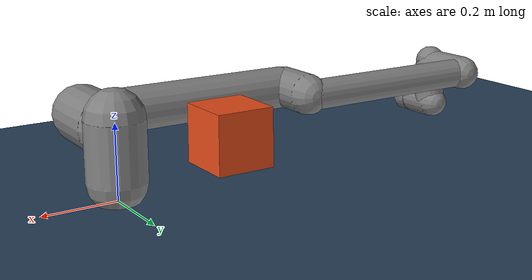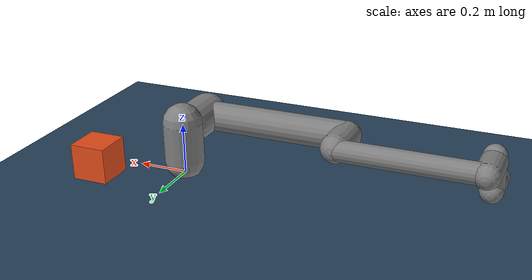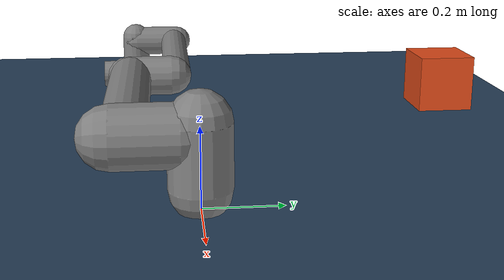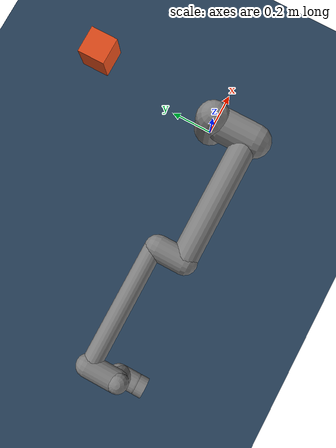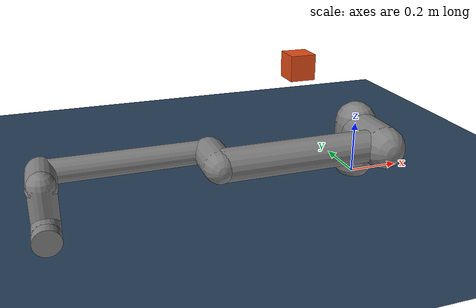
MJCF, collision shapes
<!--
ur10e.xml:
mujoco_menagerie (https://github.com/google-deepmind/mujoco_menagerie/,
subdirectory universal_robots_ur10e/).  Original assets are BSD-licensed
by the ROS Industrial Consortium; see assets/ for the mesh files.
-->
<?xml version="1.0"?>
<mujoco model="ur10e_follower_scene">

  <include file="ur10e.xml"/>

  <worldbody>
    <!-- Immovable box for contact / force-feedback testing -->
    <body name="target_box" pos="0.0 0.55 0.30">
      <geom name="box_geom" type="box" size="0.06 0.06 0.06"
            rgba="0.9 0.3 0.1 1"
            contype="1" conaffinity="1" friction="0.8 0.005 0.0001"/>
    </body>
  </worldbody>

</mujoco>

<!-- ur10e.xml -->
<mujoco model="ur10e">
  <compiler angle="radian" meshdir="../assets/ur10e" autolimits="true"/>

  <option timestep="0.002" integrator="implicitfast"/>

  <default>
    <default class="ur10e">
      <material specular="0.5" shininess="0.25"/>
      <joint axis="0 1 0" range="-6.28319 6.28319" armature="0.1"/>
      <default class="size4">
        <joint damping="10"/>
      </default>
      <default class="size3">
        <joint damping="5"/>
        <default class="size3_limited">
          <joint range="-3.1415 3.1415"/>
        </default>
      </default>
      <default class="size2">
        <joint damping="2"/>
      </default>
      <default class="visual">
        <geom type="mesh" contype="0" conaffinity="0" group="2"/>
      </default>
      <default class="collision">
        <geom type="capsule" group="3"/>
        <default class="eef_collision">
          <geom type="cylinder"/>
        </default>
      </default>
      <site size="0.001" rgba="0.5 0.5 0.5 0.3" group="4"/>
    </default>
  </default>

  <asset>
    <material class="ur10e" name="black"     rgba="0.033 0.033 0.033 1"/>
    <material class="ur10e" name="jointgray" rgba="0.278 0.278 0.278 1"/>
    <material class="ur10e" name="linkgray"  rgba="0.82 0.82 0.82 1"/>
    <material class="ur10e" name="urblue"    rgba="0.49 0.678 0.8 1"/>

    <texture type="skybox" builtin="gradient"
             rgb1="0.3 0.5 0.7" rgb2="0 0 0" width="512" height="3072"/>
    <texture type="2d" name="groundplane" builtin="checker" mark="edge"
             rgb1="0.2 0.3 0.4" rgb2="0.1 0.2 0.3" markrgb="0.8 0.8 0.8"
             width="300" height="300"/>
    <material name="groundplane" texture="groundplane" texuniform="true"
              texrepeat="5 5" reflectance="0.2"/>

    <mesh file="base_0.obj"/>
    <mesh file="base_1.obj"/>
    <mesh file="shoulder_0.obj"/>
    <mesh file="shoulder_1.obj"/>
    <mesh file="shoulder_2.obj"/>
    <mesh file="upperarm_0.obj"/>
    <mesh file="upperarm_1.obj"/>
    <mesh file="upperarm_2.obj"/>
    <mesh file="upperarm_3.obj"/>
    <mesh file="forearm_0.obj"/>
    <mesh file="forearm_1.obj"/>
    <mesh file="forearm_2.obj"/>
    <mesh file="forearm_3.obj"/>
    <mesh file="wrist1_0.obj"/>
    <mesh file="wrist1_1.obj"/>
    <mesh file="wrist1_2.obj"/>
    <mesh file="wrist2_0.obj"/>
    <mesh file="wrist2_1.obj"/>
    <mesh file="wrist2_2.obj"/>
    <mesh file="wrist3.obj"/>
  </asset>

  <worldbody>
    <!-- Scene lights + floor (so ur10e.xml is a self-contained scene) -->
    <light pos="0 0 1.5" dir="0 0 -1" directional="true"/>
    <light name="spotlight" mode="targetbodycom" target="wrist_2_link" pos="0 -1 2"/>
    <geom name="floor" size="0 0 0.05" type="plane" material="groundplane"/>

    <!-- UR10E robot                                                      -->
    <!-- base_link renamed from menagerie's "base" for ROS2 convention.   -->
    <!-- The 180° Z quat is preserved; HOME_QPOS compensates on joint 0.  -->
    <body name="base_link" quat="0 0 0 -1" childclass="ur10e">
      <inertial mass="4.0" pos="0 0 0"
                diaginertia="0.0061063308908 0.0061063308908 0.01125"/>
      <geom mesh="base_0" material="black"     class="visual"/>
      <geom mesh="base_1" material="jointgray" class="visual"/>
      <body name="shoulder_link" pos="0 0 0.181">
        <inertial pos="0 0 0" mass="7.778"
                  diaginertia="0.0314743 0.0314743 0.0218756"/>
        <joint name="shoulder_pan_joint" class="size4" axis="0 0 1"/>
        <geom mesh="shoulder_0" material="urblue"    class="visual"/>
        <geom mesh="shoulder_1" material="black"     class="visual"/>
        <geom mesh="shoulder_2" material="jointgray" class="visual"/>
        <geom class="collision" size="0.078 0.08" pos="0 0 -0.05"/>
        <body name="upper_arm_link" pos="0 0.176 0" quat="1 0 1 0">
          <inertial pos="0 0 0.3065" mass="12.93"
                    diaginertia="0.423074 0.423074 0.0363656"/>
          <joint name="shoulder_lift_joint" class="size4"/>
          <geom mesh="upperarm_0" material="black"     class="visual"/>
          <geom mesh="upperarm_1" material="jointgray" class="visual"/>
          <geom mesh="upperarm_2" material="urblue"    class="visual"/>
          <geom mesh="upperarm_3" material="linkgray"  class="visual"/>
          <geom class="collision" pos="0 -0.05 0" quat="1 1 0 0" size="0.078 0.08"/>
          <geom class="collision" size="0.06 0.3" pos="0 0 0.3"/>
          <body name="forearm_link" pos="0 -0.137 0.613">
            <inertial pos="0 0 0.2855" mass="3.87"
                      diaginertia="0.11059 0.11059 0.0108844"/>
            <joint name="elbow_joint" class="size3_limited"/>
            <geom mesh="forearm_0" material="urblue"    class="visual"/>
            <geom mesh="forearm_1" material="black"     class="visual"/>
            <geom mesh="forearm_2" material="jointgray" class="visual"/>
            <geom mesh="forearm_3" material="linkgray"  class="visual"/>
            <geom class="collision" pos="0 0.08 0" quat="1 1 0 0" size="0.058 0.065"/>
            <geom class="collision" size="0.043 0.28" pos="0 0 0.29"/>
            <body name="wrist_1_link" pos="0 0 0.571" quat="1 0 1 0">
              <inertial pos="0 0.135 0" quat="0.5 0.5 -0.5 0.5" mass="1.96"
                        diaginertia="0.0055125 0.00510825 0.00510825"/>
              <joint name="wrist_1_joint" class="size2"/>
              <geom mesh="wrist1_0" material="black"     class="visual"/>
              <geom mesh="wrist1_1" material="urblue"    class="visual"/>
              <geom mesh="wrist1_2" material="jointgray" class="visual"/>
              <geom class="collision" pos="0 0.06 0" quat="1 1 0 0" size="0.05 0.07"/>
              <body name="wrist_2_link" pos="0 0.135 0">
                <inertial pos="0 0 0.12" quat="0.5 0.5 -0.5 0.5" mass="1.96"
                          diaginertia="0.0055125 0.00510825 0.00510825"/>
                <joint name="wrist_2_joint" axis="0 0 1" class="size2"/>
                <geom mesh="wrist2_0" material="black"     class="visual"/>
                <geom mesh="wrist2_1" material="urblue"    class="visual"/>
                <geom mesh="wrist2_2" material="jointgray" class="visual"/>
                <geom class="collision" size="0.046 0.065" pos="0 0 0.05"/>
                <geom class="collision" pos="0 0.028 0.12" quat="1 1 0 0" size="0.046 0.043"/>
                <body name="wrist_3_link" pos="0 0 0.12">
                  <inertial pos="0 0.092 0" quat="0 1 -1 0" mass="0.202"
                            diaginertia="0.000204525 0.000144346 0.000144346"/>
                  <joint name="wrist_3_joint" class="size2"/>
                  <geom material="linkgray" mesh="wrist3" class="visual"/>
                  <geom class="eef_collision" pos="0 0.097 0" quat="1 1 0 0" size="0.046 0.02"/>

                  <body name="flange" pos="0 0 0">
                    <site name="eef" pos="0 0.1 0" quat="-1 1 0 0"/>
                  </body>
                </body>
              </body>
            </body>
          </body>
        </body>
      </body>
    </body>
  </worldbody>

  <actuator>
    <motor name="a_shoulder_pan"  joint="shoulder_pan_joint"
           gear="1" ctrllimited="true" ctrlrange="-330 330"/>
    <motor name="a_shoulder_lift" joint="shoulder_lift_joint"
           gear="1" ctrllimited="true" ctrlrange="-330 330"/>
    <motor name="a_elbow"         joint="elbow_joint"
           gear="1" ctrllimited="true" ctrlrange="-150 150"/>
    <motor name="a_wrist_1"       joint="wrist_1_joint"
           gear="1" ctrllimited="true" ctrlrange="-56 56"/>
    <motor name="a_wrist_2"       joint="wrist_2_joint"
           gear="1" ctrllimited="true" ctrlrange="-56 56"/>
    <motor name="a_wrist_3"       joint="wrist_3_joint"
           gear="1" ctrllimited="true" ctrlrange="-56 56"/>
  </actuator>

  <keyframe>
    <key name="home"
         qpos="-1.5708 -1.5708 1.5708 -1.5708 -1.5708 0"
         ctrl="0 0 0 0 0 0"/>
  </keyframe>
</mujoco>
